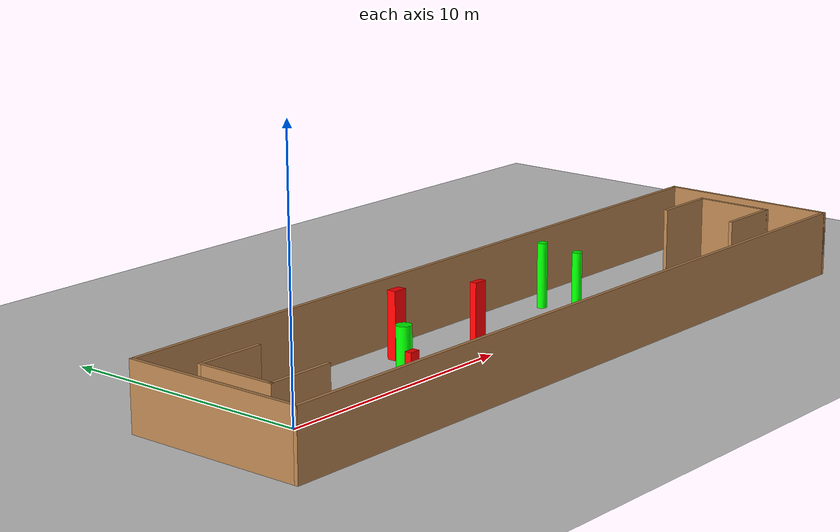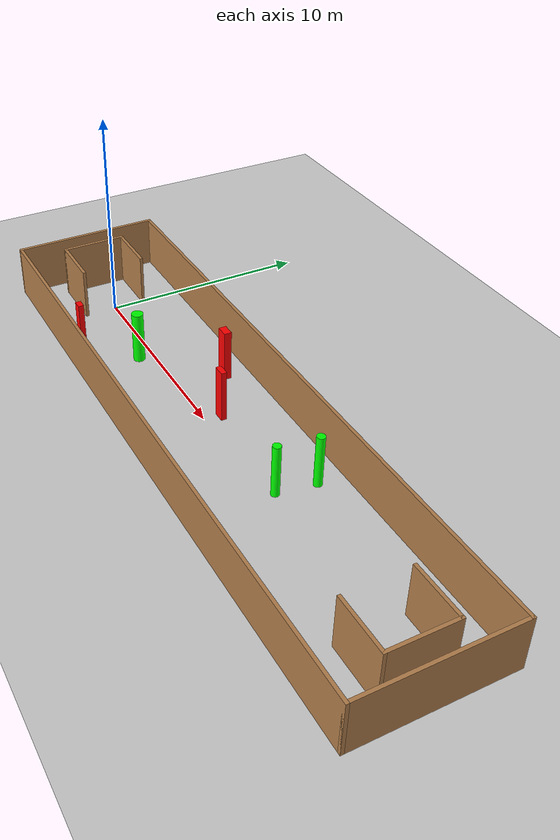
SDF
<sdf version="1.7">
 <world name="default">
  <light name="sun" type="directional">
   <pose>0 0 10 0 -0 0</pose>
   <diffuse>0.8 0.8 0.8 1</diffuse>
   <specular>0.2 0.2 0.2 1</specular>
   <attenuation>
    <range>1000</range>
    <constant>0.9</constant>
    <linear>0.01</linear>
    <quadratic>0.001</quadratic>
   </attenuation>
   <direction>-0.5 0.1 -0.9</direction>
   <spot><inner_angle>0</inner_angle><outer_angle>0</outer_angle><falloff>0</falloff></spot>
  </light>
  <model name="ground_plane">
   <static>1</static>
   <link name="link">
    <collision name="collision">
     <geometry><plane><normal>0 0 1</normal><size>100 100</size></plane></geometry>
     <surface>
      <contact><collide_bitmask>65535</collide_bitmask></contact>
      <friction><ode><mu>100</mu><mu2>50</mu2></ode></friction>
     </surface>
    </collision>
    <visual name="visual">
     <cast_shadows>0</cast_shadows>
     <geometry><plane><normal>0 0 1</normal><size>100 100</size></plane></geometry>
     <material>
      <script><uri>file://media/materials/scripts/gazebo.material</uri><name>Gazebo/Grey</name></script>
     </material>
    </visual>
   </link>
  </model>
  <gravity>0 0 -9.8</gravity>
  <magnetic_field>6e-06 2.3e-05 -4.2e-05</magnetic_field>
  <atmosphere type="adiabatic"/>
  <physics type="ode">
   <max_step_size>0.001</max_step_size>
   <real_time_factor>1</real_time_factor>
   <real_time_update_rate>1000</real_time_update_rate>
  </physics>
  <scene><ambient>0.4 0.4 0.4 1</ambient><background>0.7 0.7 0.7 1</background><shadows>1</shadows></scene>
  <spherical_coordinates>
   <surface_model>EARTH_WGS84</surface_model>
   <latitude_deg>0</latitude_deg>
   <longitude_deg>0</longitude_deg>
   <elevation>0</elevation>
   <heading_deg>0</heading_deg>
  </spherical_coordinates>
  <model name="my_base_walls">
   <link name="Wall_0">
    <collision name="Wall_0_Collision">
     <geometry><box><size>7.15 0.15 2.5</size></box></geometry>
     <pose>0 0 1.25 0 -0 0</pose>
    </collision>
    <visual name="Wall_0_Visual">
     <pose>0 0 1.25 0 -0 0</pose>
     <geometry><box><size>7.15 0.15 2.5</size></box></geometry>
     <material>
      <script><uri>file://media/materials/scripts/gazebo.material</uri><name>Gazebo/Wood</name></script>
      <ambient>1 1 1 1</ambient>
     </material>
     <meta><layer>0</layer></meta>
    </visual>
    <pose>-15 0 0 0 -0 1.5708</pose>
   </link>
   <link name="Wall_10">
    <collision name="Wall_10_Collision">
     <geometry><box><size>2.65 0.15 2.5</size></box></geometry>
     <pose>0 0 1.25 0 -0 0</pose>
    </collision>
    <visual name="Wall_10_Visual">
     <pose>0 0 1.25 0 -0 0</pose>
     <geometry><box><size>2.65 0.15 2.5</size></box></geometry>
     <material>
      <script><uri>file://media/materials/scripts/gazebo.material</uri><name>Gazebo/Wood</name></script>
      <ambient>1 1 1 1</ambient>
     </material>
     <meta><layer>0</layer></meta>
    </visual>
    <pose>-12.75 -1.5 0 0 -0 0</pose>
   </link>
   <link name="Wall_12">
    <collision name="Wall_12_Collision">
     <geometry><box><size>2.65 0.15 2.5</size></box></geometry>
     <pose>0 0 1.25 0 -0 0</pose>
    </collision>
    <visual name="Wall_12_Visual">
     <pose>0 0 1.25 0 -0 0</pose>
     <geometry><box><size>2.65 0.15 2.5</size></box></geometry>
     <material>
      <script><uri>file://media/materials/scripts/gazebo.material</uri><name>Gazebo/Wood</name></script>
      <ambient>1 1 1 1</ambient>
     </material>
     <meta><layer>0</layer></meta>
    </visual>
    <pose>-12.75 1.5 0 0 -0 0</pose>
   </link>
   <link name="Wall_14">
    <collision name="Wall_14_Collision">
     <geometry><box><size>3.15 0.15 2.5</size></box></geometry>
     <pose>0 0 1.25 0 -0 0</pose>
    </collision>
    <visual name="Wall_14_Visual">
     <pose>0 0 1.25 0 -0 0</pose>
     <geometry><box><size>3.15 0.15 2.5</size></box></geometry>
     <material>
      <script><uri>file://media/materials/scripts/gazebo.material</uri><name>Gazebo/Wood</name></script>
      <ambient>1 1 1 1</ambient>
     </material>
     <meta><layer>0</layer></meta>
    </visual>
    <pose>14 0 0 0 -0 -1.5708</pose>
   </link>
   <link name="Wall_15">
    <collision name="Wall_15_Collision">
     <geometry><box><size>2.65 0.15 2.5</size></box></geometry>
     <pose>0 0 1.25 0 -0 0</pose>
    </collision>
    <visual name="Wall_15_Visual">
     <pose>0 0 1.25 0 -0 0</pose>
     <geometry><box><size>2.65 0.15 2.5</size></box></geometry>
     <material>
      <script><uri>file://media/materials/scripts/gazebo.material</uri><name>Gazebo/Wood</name></script>
      <ambient>1 1 1 1</ambient>
     </material>
     <meta><layer>0</layer></meta>
    </visual>
    <pose>12.75 -1.5 0 0 -0 3.14159</pose>
   </link>
   <link name="Wall_17">
    <collision name="Wall_17_Collision">
     <geometry><box><size>2.65 0.15 2.5</size></box></geometry>
     <pose>0 0 1.25 0 -0 0</pose>
    </collision>
    <visual name="Wall_17_Visual">
     <pose>0 0 1.25 0 -0 0</pose>
     <geometry><box><size>2.65 0.15 2.5</size></box></geometry>
     <material>
      <script><uri>file://media/materials/scripts/gazebo.material</uri><name>Gazebo/Wood</name></script>
      <ambient>1 1 1 1</ambient>
     </material>
     <meta><layer>0</layer></meta>
    </visual>
    <pose>12.75 1.5 0 0 -0 3.14159</pose>
   </link>
   <link name="Wall_2">
    <collision name="Wall_2_Collision">
     <geometry><box><size>30.15 0.15 2.5</size></box></geometry>
     <pose>0 0 1.25 0 -0 0</pose>
    </collision>
    <visual name="Wall_2_Visual">
     <pose>0 0 1.25 0 -0 0</pose>
     <geometry><box><size>30.15 0.15 2.5</size></box></geometry>
     <material>
      <script><uri>file://media/materials/scripts/gazebo.material</uri><name>Gazebo/Wood</name></script>
      <ambient>1 1 1 1</ambient>
     </material>
     <meta><layer>0</layer></meta>
    </visual>
    <pose>-0 -3.5 0 0 -0 0</pose>
   </link>
   <link name="Wall_4">
    <collision name="Wall_4_Collision">
     <geometry><box><size>30.15 0.15 2.5</size></box></geometry>
     <pose>0 0 1.25 0 -0 0</pose>
    </collision>
    <visual name="Wall_4_Visual">
     <pose>0 0 1.25 0 -0 0</pose>
     <geometry><box><size>30.15 0.15 2.5</size></box></geometry>
     <material>
      <script><uri>file://media/materials/scripts/gazebo.material</uri><name>Gazebo/Wood</name></script>
      <ambient>1 1 1 1</ambient>
     </material>
     <meta><layer>0</layer></meta>
    </visual>
    <pose>-0 3.5 0 0 -0 0</pose>
   </link>
   <link name="Wall_6">
    <collision name="Wall_6_Collision">
     <geometry><box><size>7.15 0.15 2.5</size></box></geometry>
     <pose>0 0 1.25 0 -0 0</pose>
    </collision>
    <visual name="Wall_6_Visual">
     <pose>0 0 1.25 0 -0 0</pose>
     <geometry><box><size>7.15 0.15 2.5</size></box></geometry>
     <material>
      <script><uri>file://media/materials/scripts/gazebo.material</uri><name>Gazebo/Wood</name></script>
      <ambient>1 1 1 1</ambient>
     </material>
     <meta><layer>0</layer></meta>
    </visual>
    <pose>15 0 0 0 -0 -1.5708</pose>
   </link>
   <link name="Wall_9">
    <collision name="Wall_9_Collision">
     <geometry><box><size>3.15 0.15 2.5</size></box></geometry>
     <pose>0 0 1.25 0 -0 0</pose>
    </collision>
    <visual name="Wall_9_Visual">
     <pose>0 0 1.25 0 -0 0</pose>
     <geometry><box><size>3.15 0.15 2.5</size></box></geometry>
     <material>
      <script><uri>file://media/materials/scripts/gazebo.material</uri><name>Gazebo/Wood</name></script>
      <ambient>1 1 1 1</ambient>
     </material>
     <meta><layer>0</layer></meta>
    </visual>
    <pose>-14 0 0 0 -0 -1.5708</pose>
   </link>
   <static>1</static>
   <pose>11.5 0 0 0 -0 0</pose>
  </model>
  <model name="cylinder1">
   <static>1</static>
   <link name="link">
    <inertial>
     <mass>1</mass>
     <inertia><ixx>0.5</ixx><ixy>0</ixy><ixz>0</ixz><iyy>0.5</iyy><iyz>0</iyz><izz>1</izz></inertia>
    </inertial>
    <collision name="collision">
     <geometry><cylinder><radius>0.19232652784080528</radius><length>2.5</length></cylinder></geometry>
    </collision>
    <visual name="visual">
     <geometry><cylinder><radius>0.19232652784080528</radius><length>2.5</length></cylinder></geometry>
     <material>
      <ambient>0 1 0 1</ambient>
      <diffuse>0 1 0 1</diffuse>
      <specular>0.1 0.1 0.1 1</specular>
      <emissive>0 0 0 0</emissive>
     </material>
    </visual>
   </link>
   <pose>15.83852616422847 2.2125067339292857 1.25 0 0 0</pose>
  </model>
  <model name="cylinder2">
   <static>1</static>
   <link name="link">
    <inertial>
     <mass>1</mass>
     <inertia><ixx>0.5</ixx><ixy>0</ixy><ixz>0</ixz><iyy>0.5</iyy><iyz>0</iyz><izz>1</izz></inertia>
    </inertial>
    <collision name="collision">
     <geometry><cylinder><radius>0.18736617422641752</radius><length>2.5</length></cylinder></geometry>
    </collision>
    <visual name="visual">
     <geometry><cylinder><radius>0.18736617422641752</radius><length>2.5</length></cylinder></geometry>
     <material>
      <ambient>0 1 0 1</ambient>
      <diffuse>0 1 0 1</diffuse>
      <specular>0.1 0.1 0.1 1</specular>
      <emissive>0 0 0 0</emissive>
     </material>
    </visual>
   </link>
   <pose>15.55848652228541 0.40900406770229614 1.25 0 0 0</pose>
  </model>
  <model name="cylinder3">
   <static>1</static>
   <link name="link">
    <inertial>
     <mass>1</mass>
     <inertia><ixx>0.5</ixx><ixy>0</ixy><ixz>0</ixz><iyy>0.5</iyy><iyz>0</iyz><izz>1</izz></inertia>
    </inertial>
    <collision name="collision">
     <geometry><cylinder><radius>0.27431222381549514</radius><length>2.5</length></cylinder></geometry>
    </collision>
    <visual name="visual">
     <geometry><cylinder><radius>0.27431222381549514</radius><length>2.5</length></cylinder></geometry>
     <material>
      <ambient>0 1 0 1</ambient>
      <diffuse>0 1 0 1</diffuse>
      <specular>0.1 0.1 0.1 1</specular>
      <emissive>0 0 0 0</emissive>
     </material>
    </visual>
   </link>
   <pose>4.589615801851382 -0.6691598336494575 1.25 0 0 0</pose>
  </model>
  <model name="box1">
   <static>1</static>
   <link name="link">
    <inertial>
     <mass>1</mass>
     <inertia><ixx>0.083</ixx><ixy>0</ixy><ixz>0</ixz><iyy>0.083</iyy><iyz>0</iyz><izz>0.083</izz></inertia>
    </inertial>
    <collision name="collision">
     <geometry><box><size>0.405543709654848 0.25818751465197587 2.5</size></box></geometry>
    </collision>
    <visual name="visual">
     <geometry><box><size>0.405543709654848 0.25818751465197587 2.5</size></box></geometry>
     <material>
      <ambient>1 0 0 1</ambient>
      <diffuse>1 0 0 1</diffuse>
      <specular>0.1 0.1 0.1 1</specular>
      <emissive>0 0 0 0</emissive>
     </material>
    </visual>
    <sensor name="my_contact" type="contact">
     <contact><collision>box_collision</collision><topic>__default_topic__</topic></contact>
    </sensor>
   </link>
   <pose>2.606458271988645 -2.710758772414897 1.25 0 0 0</pose>
  </model>
  <model name="box2">
   <static>1</static>
   <link name="link">
    <inertial>
     <mass>1</mass>
     <inertia><ixx>0.083</ixx><ixy>0</ixy><ixz>0</ixz><iyy>0.083</iyy><iyz>0</iyz><izz>0.083</izz></inertia>
    </inertial>
    <collision name="collision">
     <geometry><box><size>0.563620799259926 0.3520977825478837 2.5</size></box></geometry>
    </collision>
    <visual name="visual">
     <geometry><box><size>0.563620799259926 0.3520977825478837 2.5</size></box></geometry>
     <material>
      <ambient>1 0 0 1</ambient>
      <diffuse>1 0 0 1</diffuse>
      <specular>0.1 0.1 0.1 1</specular>
      <emissive>0 0 0 0</emissive>
     </material>
    </visual>
    <sensor name="my_contact" type="contact">
     <contact><collision>box_collision</collision><topic>__default_topic__</topic></contact>
    </sensor>
   </link>
   <pose>7.616352574756812 2.2767468871244647 1.25 0 0 0</pose>
  </model>
  <model name="box3">
   <static>1</static>
   <link name="link">
    <inertial>
     <mass>1</mass>
     <inertia><ixx>0.083</ixx><ixy>0</ixy><ixz>0</ixz><iyy>0.083</iyy><iyz>0</iyz><izz>0.083</izz></inertia>
    </inertial>
    <collision name="collision">
     <geometry><box><size>0.5384324744769842 0.25719793773427574 2.5</size></box></geometry>
    </collision>
    <visual name="visual">
     <geometry><box><size>0.5384324744769842 0.25719793773427574 2.5</size></box></geometry>
     <material>
      <ambient>1 0 0 1</ambient>
      <diffuse>1 0 0 1</diffuse>
      <specular>0.1 0.1 0.1 1</specular>
      <emissive>0 0 0 0</emissive>
     </material>
    </visual>
    <sensor name="my_contact" type="contact">
     <contact><collision>box_collision</collision><topic>__default_topic__</topic></contact>
    </sensor>
   </link>
   <pose>10.20358174231389 0.7576755632466519 1.25 0 0 0</pose>
  </model>
 </world>
</sdf>
